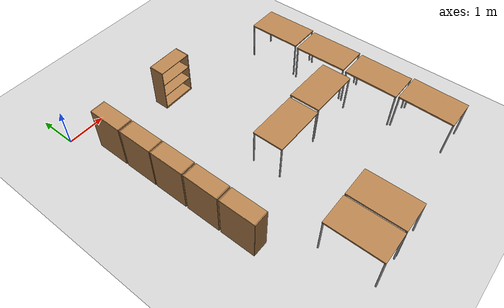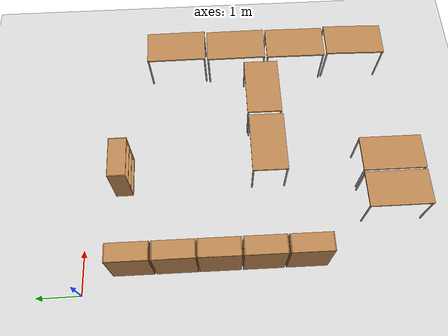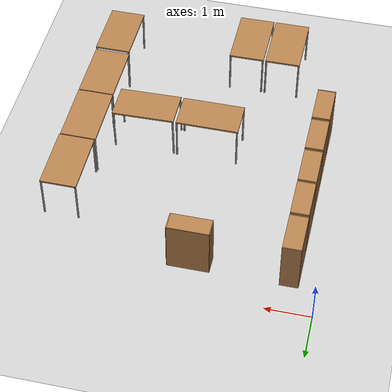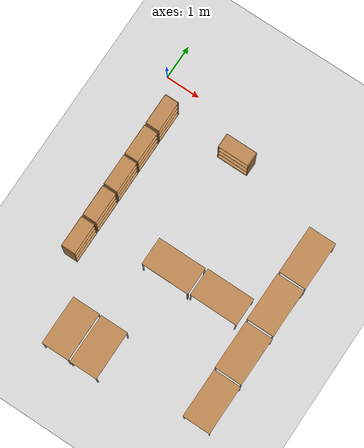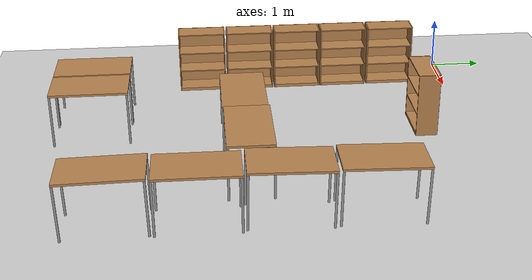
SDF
<sdf version="1.6">
 <world name="default">
  <model name="ground_plane">
   <static>1</static>
   <link name="link">
    <collision name="collision">
     <geometry><plane><normal>0 0 1</normal><size>100 100</size></plane></geometry>
     <surface><friction><ode><mu>100</mu><mu2>50</mu2></ode></friction></surface>
    </collision>
    <visual name="visual">
     <cast_shadows>0</cast_shadows>
     <geometry><plane><normal>0 0 1</normal><size>100 100</size></plane></geometry>
     <material>
      <script><uri>file://media/materials/scripts/gazebo.material</uri><name>Gazebo/Grey</name></script>
     </material>
    </visual>
   </link>
  </model>
  <model name="table_0_clone_0_clone_clone">
   <static>0</static>
   <link name="link">
    <collision name="surface">
     <pose>0 0 1 0 -0 0</pose>
     <geometry><box><size>1.5 0.8 0.03</size></box></geometry>
     <surface><friction><ode><mu>0.6</mu><mu2>0.6</mu2></ode></friction></surface>
    </collision>
    <visual name="visual1">
     <pose>0 0 1 0 -0 0</pose>
     <geometry><box><size>1.4 0.8 0.04</size></box></geometry>
     <material>
      <script><uri>file://media/materials/scripts/gazebo.material</uri><name>Gazebo/Wood</name></script>
     </material>
    </visual>
    <collision name="front_left_leg">
     <pose>0.68 0.38 0.5 0 -0 0</pose>
     <geometry><cylinder><radius>0.02</radius><length>1</length></cylinder></geometry>
    </collision>
    <visual name="front_left_leg">
     <pose>0.68 0.38 0.5 0 -0 0</pose>
     <geometry><cylinder><radius>0.02</radius><length>1</length></cylinder></geometry>
     <material>
      <script><uri>file://media/materials/scripts/gazebo.material</uri><name>Gazebo/Grey</name></script>
     </material>
    </visual>
    <collision name="front_right_leg">
     <pose>0.68 -0.38 0.5 0 -0 0</pose>
     <geometry><cylinder><radius>0.02</radius><length>1</length></cylinder></geometry>
    </collision>
    <visual name="front_right_leg">
     <pose>0.68 -0.38 0.5 0 -0 0</pose>
     <geometry><cylinder><radius>0.02</radius><length>1</length></cylinder></geometry>
     <material>
      <script><uri>file://media/materials/scripts/gazebo.material</uri><name>Gazebo/Grey</name></script>
     </material>
    </visual>
    <collision name="back_right_leg">
     <pose>-0.68 -0.38 0.5 0 -0 0</pose>
     <geometry><cylinder><radius>0.02</radius><length>1</length></cylinder></geometry>
    </collision>
    <visual name="back_right_leg">
     <pose>-0.68 -0.38 0.5 0 -0 0</pose>
     <geometry><cylinder><radius>0.02</radius><length>1</length></cylinder></geometry>
     <material>
      <script><uri>file://media/materials/scripts/gazebo.material</uri><name>Gazebo/Grey</name></script>
     </material>
    </visual>
    <collision name="back_left_leg">
     <pose>-0.68 0.38 0.5 0 -0 0</pose>
     <geometry><cylinder><radius>0.02</radius><length>1</length></cylinder></geometry>
    </collision>
    <visual name="back_left_leg">
     <pose>-0.68 0.38 0.5 0 -0 0</pose>
     <geometry><cylinder><radius>0.02</radius><length>1</length></cylinder></geometry>
     <material>
      <script><uri>file://media/materials/scripts/gazebo.material</uri><name>Gazebo/Grey</name></script>
     </material>
    </visual>
    <inertial>
     <inertia><ixx>1</ixx><ixy>0</ixy><ixz>0</ixz><iyy>1</iyy><iyz>0</iyz><izz>1</izz></inertia>
     <mass>1</mass>
    </inertial>
   </link>
   <pose>5.70425 -5.08214 1e-06 -2e-06 1e-06 -1.57795</pose>
  </model>
  <model name="table_0_clone_0_clone_clone_0">
   <static>0</static>
   <link name="link">
    <collision name="surface">
     <pose>0 0 1 0 -0 0</pose>
     <geometry><box><size>1.5 0.8 0.03</size></box></geometry>
     <surface><friction><ode><mu>0.6</mu><mu2>0.6</mu2></ode></friction></surface>
    </collision>
    <visual name="visual1">
     <pose>0 0 1 0 -0 0</pose>
     <geometry><box><size>1.4 0.8 0.04</size></box></geometry>
     <material>
      <script><uri>file://media/materials/scripts/gazebo.material</uri><name>Gazebo/Wood</name></script>
     </material>
    </visual>
    <collision name="front_left_leg">
     <pose>0.68 0.38 0.5 0 -0 0</pose>
     <geometry><cylinder><radius>0.02</radius><length>1</length></cylinder></geometry>
    </collision>
    <visual name="front_left_leg">
     <pose>0.68 0.38 0.5 0 -0 0</pose>
     <geometry><cylinder><radius>0.02</radius><length>1</length></cylinder></geometry>
     <material>
      <script><uri>file://media/materials/scripts/gazebo.material</uri><name>Gazebo/Grey</name></script>
     </material>
    </visual>
    <collision name="front_right_leg">
     <pose>0.68 -0.38 0.5 0 -0 0</pose>
     <geometry><cylinder><radius>0.02</radius><length>1</length></cylinder></geometry>
    </collision>
    <visual name="front_right_leg">
     <pose>0.68 -0.38 0.5 0 -0 0</pose>
     <geometry><cylinder><radius>0.02</radius><length>1</length></cylinder></geometry>
     <material>
      <script><uri>file://media/materials/scripts/gazebo.material</uri><name>Gazebo/Grey</name></script>
     </material>
    </visual>
    <collision name="back_right_leg">
     <pose>-0.68 -0.38 0.5 0 -0 0</pose>
     <geometry><cylinder><radius>0.02</radius><length>1</length></cylinder></geometry>
    </collision>
    <visual name="back_right_leg">
     <pose>-0.68 -0.38 0.5 0 -0 0</pose>
     <geometry><cylinder><radius>0.02</radius><length>1</length></cylinder></geometry>
     <material>
      <script><uri>file://media/materials/scripts/gazebo.material</uri><name>Gazebo/Grey</name></script>
     </material>
    </visual>
    <collision name="back_left_leg">
     <pose>-0.68 0.38 0.5 0 -0 0</pose>
     <geometry><cylinder><radius>0.02</radius><length>1</length></cylinder></geometry>
    </collision>
    <visual name="back_left_leg">
     <pose>-0.68 0.38 0.5 0 -0 0</pose>
     <geometry><cylinder><radius>0.02</radius><length>1</length></cylinder></geometry>
     <material>
      <script><uri>file://media/materials/scripts/gazebo.material</uri><name>Gazebo/Grey</name></script>
     </material>
    </visual>
    <inertial>
     <inertia><ixx>1</ixx><ixy>0</ixy><ixz>0</ixz><iyy>1</iyy><iyz>0</iyz><izz>1</izz></inertia>
     <mass>1</mass>
    </inertial>
   </link>
   <pose>5.71047 -6.51144 0.015109 -0 0.021586 -1.57795</pose>
  </model>
  <model name="table_0_clone_0_clone_clone_1">
   <static>0</static>
   <link name="link">
    <collision name="surface">
     <pose>0 0 1 0 -0 0</pose>
     <geometry><box><size>1.5 0.8 0.03</size></box></geometry>
     <surface><friction><ode><mu>0.6</mu><mu2>0.6</mu2></ode></friction></surface>
    </collision>
    <visual name="visual1">
     <pose>0 0 1 0 -0 0</pose>
     <geometry><box><size>1.4 0.8 0.04</size></box></geometry>
     <material>
      <script><uri>file://media/materials/scripts/gazebo.material</uri><name>Gazebo/Wood</name></script>
     </material>
    </visual>
    <collision name="front_left_leg">
     <pose>0.68 0.38 0.5 0 -0 0</pose>
     <geometry><cylinder><radius>0.02</radius><length>1</length></cylinder></geometry>
    </collision>
    <visual name="front_left_leg">
     <pose>0.68 0.38 0.5 0 -0 0</pose>
     <geometry><cylinder><radius>0.02</radius><length>1</length></cylinder></geometry>
     <material>
      <script><uri>file://media/materials/scripts/gazebo.material</uri><name>Gazebo/Grey</name></script>
     </material>
    </visual>
    <collision name="front_right_leg">
     <pose>0.68 -0.38 0.5 0 -0 0</pose>
     <geometry><cylinder><radius>0.02</radius><length>1</length></cylinder></geometry>
    </collision>
    <visual name="front_right_leg">
     <pose>0.68 -0.38 0.5 0 -0 0</pose>
     <geometry><cylinder><radius>0.02</radius><length>1</length></cylinder></geometry>
     <material>
      <script><uri>file://media/materials/scripts/gazebo.material</uri><name>Gazebo/Grey</name></script>
     </material>
    </visual>
    <collision name="back_right_leg">
     <pose>-0.68 -0.38 0.5 0 -0 0</pose>
     <geometry><cylinder><radius>0.02</radius><length>1</length></cylinder></geometry>
    </collision>
    <visual name="back_right_leg">
     <pose>-0.68 -0.38 0.5 0 -0 0</pose>
     <geometry><cylinder><radius>0.02</radius><length>1</length></cylinder></geometry>
     <material>
      <script><uri>file://media/materials/scripts/gazebo.material</uri><name>Gazebo/Grey</name></script>
     </material>
    </visual>
    <collision name="back_left_leg">
     <pose>-0.68 0.38 0.5 0 -0 0</pose>
     <geometry><cylinder><radius>0.02</radius><length>1</length></cylinder></geometry>
    </collision>
    <visual name="back_left_leg">
     <pose>-0.68 0.38 0.5 0 -0 0</pose>
     <geometry><cylinder><radius>0.02</radius><length>1</length></cylinder></geometry>
     <material>
      <script><uri>file://media/materials/scripts/gazebo.material</uri><name>Gazebo/Grey</name></script>
     </material>
    </visual>
    <inertial>
     <inertia><ixx>1</ixx><ixy>0</ixy><ixz>0</ixz><iyy>1</iyy><iyz>0</iyz><izz>1</izz></inertia>
     <mass>1</mass>
    </inertial>
   </link>
   <pose>2.60823 -6.96246 -7e-06 0 4e-06 -1.57084</pose>
  </model>
  <model name="table_0_clone_0_clone_clone_2">
   <static>0</static>
   <link name="link">
    <collision name="surface">
     <pose>0 0 1 0 -0 0</pose>
     <geometry><box><size>1.5 0.8 0.03</size></box></geometry>
     <surface><friction><ode><mu>0.6</mu><mu2>0.6</mu2></ode></friction></surface>
    </collision>
    <visual name="visual1">
     <pose>0 0 1 0 -0 0</pose>
     <geometry><box><size>1.4 0.8 0.04</size></box></geometry>
     <material>
      <script><uri>file://media/materials/scripts/gazebo.material</uri><name>Gazebo/Wood</name></script>
     </material>
    </visual>
    <collision name="front_left_leg">
     <pose>0.68 0.38 0.5 0 -0 0</pose>
     <geometry><cylinder><radius>0.02</radius><length>1</length></cylinder></geometry>
    </collision>
    <visual name="front_left_leg">
     <pose>0.68 0.38 0.5 0 -0 0</pose>
     <geometry><cylinder><radius>0.02</radius><length>1</length></cylinder></geometry>
     <material>
      <script><uri>file://media/materials/scripts/gazebo.material</uri><name>Gazebo/Grey</name></script>
     </material>
    </visual>
    <collision name="front_right_leg">
     <pose>0.68 -0.38 0.5 0 -0 0</pose>
     <geometry><cylinder><radius>0.02</radius><length>1</length></cylinder></geometry>
    </collision>
    <visual name="front_right_leg">
     <pose>0.68 -0.38 0.5 0 -0 0</pose>
     <geometry><cylinder><radius>0.02</radius><length>1</length></cylinder></geometry>
     <material>
      <script><uri>file://media/materials/scripts/gazebo.material</uri><name>Gazebo/Grey</name></script>
     </material>
    </visual>
    <collision name="back_right_leg">
     <pose>-0.68 -0.38 0.5 0 -0 0</pose>
     <geometry><cylinder><radius>0.02</radius><length>1</length></cylinder></geometry>
    </collision>
    <visual name="back_right_leg">
     <pose>-0.68 -0.38 0.5 0 -0 0</pose>
     <geometry><cylinder><radius>0.02</radius><length>1</length></cylinder></geometry>
     <material>
      <script><uri>file://media/materials/scripts/gazebo.material</uri><name>Gazebo/Grey</name></script>
     </material>
    </visual>
    <collision name="back_left_leg">
     <pose>-0.68 0.38 0.5 0 -0 0</pose>
     <geometry><cylinder><radius>0.02</radius><length>1</length></cylinder></geometry>
    </collision>
    <visual name="back_left_leg">
     <pose>-0.68 0.38 0.5 0 -0 0</pose>
     <geometry><cylinder><radius>0.02</radius><length>1</length></cylinder></geometry>
     <material>
      <script><uri>file://media/materials/scripts/gazebo.material</uri><name>Gazebo/Grey</name></script>
     </material>
    </visual>
    <inertial>
     <inertia><ixx>1</ixx><ixy>0</ixy><ixz>0</ixz><iyy>1</iyy><iyz>0</iyz><izz>1</izz></inertia>
     <mass>1</mass>
    </inertial>
   </link>
   <pose>1.76358 -6.96121 -1e-06 0 0 -1.57001</pose>
  </model>
  <model name="bookshelf">
   <static>1</static>
   <link name="link">
    <inertial><mass>1</mass></inertial>
    <collision name="back">
     <pose>0 0.005 0.6 0 -0 0</pose>
     <geometry><box><size>0.9 0.01 1.2</size></box></geometry>
    </collision>
    <visual name="visual1">
     <pose>0 0.005 0.6 0 -0 0</pose>
     <geometry><box><size>0.9 0.01 1.2</size></box></geometry>
     <material>
      <script><uri>file://media/materials/scripts/gazebo.material</uri><name>Gazebo/Wood</name></script>
     </material>
    </visual>
    <collision name="left_side">
     <pose>0.45 -0.195 0.6 0 -0 0</pose>
     <geometry><box><size>0.02 0.4 1.2</size></box></geometry>
    </collision>
    <visual name="visual2">
     <pose>0.45 -0.195 0.6 0 -0 0</pose>
     <geometry><box><size>0.02 0.4 1.2</size></box></geometry>
     <material>
      <script><uri>file://media/materials/scripts/gazebo.material</uri><name>Gazebo/Wood</name></script>
     </material>
    </visual>
    <collision name="right_side">
     <pose>-0.45 -0.195 0.6 0 -0 0</pose>
     <geometry><box><size>0.02 0.4 1.2</size></box></geometry>
    </collision>
    <visual name="visual3">
     <pose>-0.45 -0.195 0.6 0 -0 0</pose>
     <geometry><box><size>0.02 0.4 1.2</size></box></geometry>
     <material>
      <script><uri>file://media/materials/scripts/gazebo.material</uri><name>Gazebo/Wood</name></script>
     </material>
    </visual>
    <collision name="bottom">
     <pose>0 -0.195 0.03 0 -0 0</pose>
     <geometry><box><size>0.88 0.4 0.06</size></box></geometry>
    </collision>
    <visual name="visual4">
     <pose>0 -0.195 0.03 0 -0 0</pose>
     <geometry><box><size>0.88 0.4 0.06</size></box></geometry>
     <material>
      <script><uri>file://media/materials/scripts/gazebo.material</uri><name>Gazebo/Wood</name></script>
     </material>
    </visual>
    <collision name="top">
     <pose>0 -0.195 1.19 0 -0 0</pose>
     <geometry><box><size>0.88 0.4 0.02</size></box></geometry>
    </collision>
    <visual name="visual5">
     <pose>0 -0.195 1.19 0 -0 0</pose>
     <geometry><box><size>0.88 0.4 0.02</size></box></geometry>
     <material>
      <script><uri>file://media/materials/scripts/gazebo.material</uri><name>Gazebo/Wood</name></script>
     </material>
    </visual>
    <collision name="low_shelf">
     <pose>0 -0.195 0.43 0 -0 0</pose>
     <geometry><box><size>0.88 0.4 0.02</size></box></geometry>
    </collision>
    <visual name="visual6">
     <pose>0 -0.195 0.43 0 -0 0</pose>
     <geometry><box><size>0.88 0.4 0.02</size></box></geometry>
     <material>
      <script><uri>file://media/materials/scripts/gazebo.material</uri><name>Gazebo/Wood</name></script>
     </material>
    </visual>
    <collision name="high_shelf">
     <pose>0 -0.195 0.8 0 -0 0</pose>
     <geometry><box><size>0.88 0.4 0.02</size></box></geometry>
    </collision>
    <visual name="visual7">
     <pose>0 -0.195 0.8 0 -0 0</pose>
     <geometry><box><size>0.88 0.4 0.02</size></box></geometry>
     <material>
      <script><uri>file://media/materials/scripts/gazebo.material</uri><name>Gazebo/Wood</name></script>
     </material>
    </visual>
   </link>
   <pose>0.408915 -1.12037 0 0 -0 1.56964</pose>
  </model>
  <model name="bookshelf_clone">
   <static>1</static>
   <link name="link">
    <inertial><mass>1</mass></inertial>
    <collision name="back">
     <pose>0 0.005 0.6 0 -0 0</pose>
     <geometry><box><size>0.9 0.01 1.2</size></box></geometry>
    </collision>
    <visual name="visual1">
     <pose>0 0.005 0.6 0 -0 0</pose>
     <geometry><box><size>0.9 0.01 1.2</size></box></geometry>
     <material>
      <script><uri>file://media/materials/scripts/gazebo.material</uri><name>Gazebo/Wood</name></script>
     </material>
    </visual>
    <collision name="left_side">
     <pose>0.45 -0.195 0.6 0 -0 0</pose>
     <geometry><box><size>0.02 0.4 1.2</size></box></geometry>
    </collision>
    <visual name="visual2">
     <pose>0.45 -0.195 0.6 0 -0 0</pose>
     <geometry><box><size>0.02 0.4 1.2</size></box></geometry>
     <material>
      <script><uri>file://media/materials/scripts/gazebo.material</uri><name>Gazebo/Wood</name></script>
     </material>
    </visual>
    <collision name="right_side">
     <pose>-0.45 -0.195 0.6 0 -0 0</pose>
     <geometry><box><size>0.02 0.4 1.2</size></box></geometry>
    </collision>
    <visual name="visual3">
     <pose>-0.45 -0.195 0.6 0 -0 0</pose>
     <geometry><box><size>0.02 0.4 1.2</size></box></geometry>
     <material>
      <script><uri>file://media/materials/scripts/gazebo.material</uri><name>Gazebo/Wood</name></script>
     </material>
    </visual>
    <collision name="bottom">
     <pose>0 -0.195 0.03 0 -0 0</pose>
     <geometry><box><size>0.88 0.4 0.06</size></box></geometry>
    </collision>
    <visual name="visual4">
     <pose>0 -0.195 0.03 0 -0 0</pose>
     <geometry><box><size>0.88 0.4 0.06</size></box></geometry>
     <material>
      <script><uri>file://media/materials/scripts/gazebo.material</uri><name>Gazebo/Wood</name></script>
     </material>
    </visual>
    <collision name="top">
     <pose>0 -0.195 1.19 0 -0 0</pose>
     <geometry><box><size>0.88 0.4 0.02</size></box></geometry>
    </collision>
    <visual name="visual5">
     <pose>0 -0.195 1.19 0 -0 0</pose>
     <geometry><box><size>0.88 0.4 0.02</size></box></geometry>
     <material>
      <script><uri>file://media/materials/scripts/gazebo.material</uri><name>Gazebo/Wood</name></script>
     </material>
    </visual>
    <collision name="low_shelf">
     <pose>0 -0.195 0.43 0 -0 0</pose>
     <geometry><box><size>0.88 0.4 0.02</size></box></geometry>
    </collision>
    <visual name="visual6">
     <pose>0 -0.195 0.43 0 -0 0</pose>
     <geometry><box><size>0.88 0.4 0.02</size></box></geometry>
     <material>
      <script><uri>file://media/materials/scripts/gazebo.material</uri><name>Gazebo/Wood</name></script>
     </material>
    </visual>
    <collision name="high_shelf">
     <pose>0 -0.195 0.8 0 -0 0</pose>
     <geometry><box><size>0.88 0.4 0.02</size></box></geometry>
    </collision>
    <visual name="visual7">
     <pose>0 -0.195 0.8 0 -0 0</pose>
     <geometry><box><size>0.88 0.4 0.02</size></box></geometry>
     <material>
      <script><uri>file://media/materials/scripts/gazebo.material</uri><name>Gazebo/Wood</name></script>
     </material>
    </visual>
   </link>
   <pose>0.408917 -2.07439 0 0 -0 1.56964</pose>
  </model>
  <model name="bookshelf_clone_0">
   <static>1</static>
   <link name="link">
    <inertial><mass>1</mass></inertial>
    <collision name="back">
     <pose>0 0.005 0.6 0 -0 0</pose>
     <geometry><box><size>0.9 0.01 1.2</size></box></geometry>
    </collision>
    <visual name="visual1">
     <pose>0 0.005 0.6 0 -0 0</pose>
     <geometry><box><size>0.9 0.01 1.2</size></box></geometry>
     <material>
      <script><uri>file://media/materials/scripts/gazebo.material</uri><name>Gazebo/Wood</name></script>
     </material>
    </visual>
    <collision name="left_side">
     <pose>0.45 -0.195 0.6 0 -0 0</pose>
     <geometry><box><size>0.02 0.4 1.2</size></box></geometry>
    </collision>
    <visual name="visual2">
     <pose>0.45 -0.195 0.6 0 -0 0</pose>
     <geometry><box><size>0.02 0.4 1.2</size></box></geometry>
     <material>
      <script><uri>file://media/materials/scripts/gazebo.material</uri><name>Gazebo/Wood</name></script>
     </material>
    </visual>
    <collision name="right_side">
     <pose>-0.45 -0.195 0.6 0 -0 0</pose>
     <geometry><box><size>0.02 0.4 1.2</size></box></geometry>
    </collision>
    <visual name="visual3">
     <pose>-0.45 -0.195 0.6 0 -0 0</pose>
     <geometry><box><size>0.02 0.4 1.2</size></box></geometry>
     <material>
      <script><uri>file://media/materials/scripts/gazebo.material</uri><name>Gazebo/Wood</name></script>
     </material>
    </visual>
    <collision name="bottom">
     <pose>0 -0.195 0.03 0 -0 0</pose>
     <geometry><box><size>0.88 0.4 0.06</size></box></geometry>
    </collision>
    <visual name="visual4">
     <pose>0 -0.195 0.03 0 -0 0</pose>
     <geometry><box><size>0.88 0.4 0.06</size></box></geometry>
     <material>
      <script><uri>file://media/materials/scripts/gazebo.material</uri><name>Gazebo/Wood</name></script>
     </material>
    </visual>
    <collision name="top">
     <pose>0 -0.195 1.19 0 -0 0</pose>
     <geometry><box><size>0.88 0.4 0.02</size></box></geometry>
    </collision>
    <visual name="visual5">
     <pose>0 -0.195 1.19 0 -0 0</pose>
     <geometry><box><size>0.88 0.4 0.02</size></box></geometry>
     <material>
      <script><uri>file://media/materials/scripts/gazebo.material</uri><name>Gazebo/Wood</name></script>
     </material>
    </visual>
    <collision name="low_shelf">
     <pose>0 -0.195 0.43 0 -0 0</pose>
     <geometry><box><size>0.88 0.4 0.02</size></box></geometry>
    </collision>
    <visual name="visual6">
     <pose>0 -0.195 0.43 0 -0 0</pose>
     <geometry><box><size>0.88 0.4 0.02</size></box></geometry>
     <material>
      <script><uri>file://media/materials/scripts/gazebo.material</uri><name>Gazebo/Wood</name></script>
     </material>
    </visual>
    <collision name="high_shelf">
     <pose>0 -0.195 0.8 0 -0 0</pose>
     <geometry><box><size>0.88 0.4 0.02</size></box></geometry>
    </collision>
    <visual name="visual7">
     <pose>0 -0.195 0.8 0 -0 0</pose>
     <geometry><box><size>0.88 0.4 0.02</size></box></geometry>
     <material>
      <script><uri>file://media/materials/scripts/gazebo.material</uri><name>Gazebo/Wood</name></script>
     </material>
    </visual>
   </link>
   <pose>0.408917 -3.01429 0 0 -0 1.56964</pose>
  </model>
  <model name="bookshelf_clone_1">
   <static>1</static>
   <link name="link">
    <inertial><mass>1</mass></inertial>
    <collision name="back">
     <pose>0 0.005 0.6 0 -0 0</pose>
     <geometry><box><size>0.9 0.01 1.2</size></box></geometry>
    </collision>
    <visual name="visual1">
     <pose>0 0.005 0.6 0 -0 0</pose>
     <geometry><box><size>0.9 0.01 1.2</size></box></geometry>
     <material>
      <script><uri>file://media/materials/scripts/gazebo.material</uri><name>Gazebo/Wood</name></script>
     </material>
    </visual>
    <collision name="left_side">
     <pose>0.45 -0.195 0.6 0 -0 0</pose>
     <geometry><box><size>0.02 0.4 1.2</size></box></geometry>
    </collision>
    <visual name="visual2">
     <pose>0.45 -0.195 0.6 0 -0 0</pose>
     <geometry><box><size>0.02 0.4 1.2</size></box></geometry>
     <material>
      <script><uri>file://media/materials/scripts/gazebo.material</uri><name>Gazebo/Wood</name></script>
     </material>
    </visual>
    <collision name="right_side">
     <pose>-0.45 -0.195 0.6 0 -0 0</pose>
     <geometry><box><size>0.02 0.4 1.2</size></box></geometry>
    </collision>
    <visual name="visual3">
     <pose>-0.45 -0.195 0.6 0 -0 0</pose>
     <geometry><box><size>0.02 0.4 1.2</size></box></geometry>
     <material>
      <script><uri>file://media/materials/scripts/gazebo.material</uri><name>Gazebo/Wood</name></script>
     </material>
    </visual>
    <collision name="bottom">
     <pose>0 -0.195 0.03 0 -0 0</pose>
     <geometry><box><size>0.88 0.4 0.06</size></box></geometry>
    </collision>
    <visual name="visual4">
     <pose>0 -0.195 0.03 0 -0 0</pose>
     <geometry><box><size>0.88 0.4 0.06</size></box></geometry>
     <material>
      <script><uri>file://media/materials/scripts/gazebo.material</uri><name>Gazebo/Wood</name></script>
     </material>
    </visual>
    <collision name="top">
     <pose>0 -0.195 1.19 0 -0 0</pose>
     <geometry><box><size>0.88 0.4 0.02</size></box></geometry>
    </collision>
    <visual name="visual5">
     <pose>0 -0.195 1.19 0 -0 0</pose>
     <geometry><box><size>0.88 0.4 0.02</size></box></geometry>
     <material>
      <script><uri>file://media/materials/scripts/gazebo.material</uri><name>Gazebo/Wood</name></script>
     </material>
    </visual>
    <collision name="low_shelf">
     <pose>0 -0.195 0.43 0 -0 0</pose>
     <geometry><box><size>0.88 0.4 0.02</size></box></geometry>
    </collision>
    <visual name="visual6">
     <pose>0 -0.195 0.43 0 -0 0</pose>
     <geometry><box><size>0.88 0.4 0.02</size></box></geometry>
     <material>
      <script><uri>file://media/materials/scripts/gazebo.material</uri><name>Gazebo/Wood</name></script>
     </material>
    </visual>
    <collision name="high_shelf">
     <pose>0 -0.195 0.8 0 -0 0</pose>
     <geometry><box><size>0.88 0.4 0.02</size></box></geometry>
    </collision>
    <visual name="visual7">
     <pose>0 -0.195 0.8 0 -0 0</pose>
     <geometry><box><size>0.88 0.4 0.02</size></box></geometry>
     <material>
      <script><uri>file://media/materials/scripts/gazebo.material</uri><name>Gazebo/Wood</name></script>
     </material>
    </visual>
   </link>
   <pose>0.408917 -3.96628 0 0 -0 1.56964</pose>
  </model>
  <model name="bookshelf_clone_2">
   <static>1</static>
   <link name="link">
    <inertial><mass>1</mass></inertial>
    <collision name="back">
     <pose>0 0.005 0.6 0 -0 0</pose>
     <geometry><box><size>0.9 0.01 1.2</size></box></geometry>
    </collision>
    <visual name="visual1">
     <pose>0 0.005 0.6 0 -0 0</pose>
     <geometry><box><size>0.9 0.01 1.2</size></box></geometry>
     <material>
      <script><uri>file://media/materials/scripts/gazebo.material</uri><name>Gazebo/Wood</name></script>
     </material>
    </visual>
    <collision name="left_side">
     <pose>0.45 -0.195 0.6 0 -0 0</pose>
     <geometry><box><size>0.02 0.4 1.2</size></box></geometry>
    </collision>
    <visual name="visual2">
     <pose>0.45 -0.195 0.6 0 -0 0</pose>
     <geometry><box><size>0.02 0.4 1.2</size></box></geometry>
     <material>
      <script><uri>file://media/materials/scripts/gazebo.material</uri><name>Gazebo/Wood</name></script>
     </material>
    </visual>
    <collision name="right_side">
     <pose>-0.45 -0.195 0.6 0 -0 0</pose>
     <geometry><box><size>0.02 0.4 1.2</size></box></geometry>
    </collision>
    <visual name="visual3">
     <pose>-0.45 -0.195 0.6 0 -0 0</pose>
     <geometry><box><size>0.02 0.4 1.2</size></box></geometry>
     <material>
      <script><uri>file://media/materials/scripts/gazebo.material</uri><name>Gazebo/Wood</name></script>
     </material>
    </visual>
    <collision name="bottom">
     <pose>0 -0.195 0.03 0 -0 0</pose>
     <geometry><box><size>0.88 0.4 0.06</size></box></geometry>
    </collision>
    <visual name="visual4">
     <pose>0 -0.195 0.03 0 -0 0</pose>
     <geometry><box><size>0.88 0.4 0.06</size></box></geometry>
     <material>
      <script><uri>file://media/materials/scripts/gazebo.material</uri><name>Gazebo/Wood</name></script>
     </material>
    </visual>
    <collision name="top">
     <pose>0 -0.195 1.19 0 -0 0</pose>
     <geometry><box><size>0.88 0.4 0.02</size></box></geometry>
    </collision>
    <visual name="visual5">
     <pose>0 -0.195 1.19 0 -0 0</pose>
     <geometry><box><size>0.88 0.4 0.02</size></box></geometry>
     <material>
      <script><uri>file://media/materials/scripts/gazebo.material</uri><name>Gazebo/Wood</name></script>
     </material>
    </visual>
    <collision name="low_shelf">
     <pose>0 -0.195 0.43 0 -0 0</pose>
     <geometry><box><size>0.88 0.4 0.02</size></box></geometry>
    </collision>
    <visual name="visual6">
     <pose>0 -0.195 0.43 0 -0 0</pose>
     <geometry><box><size>0.88 0.4 0.02</size></box></geometry>
     <material>
      <script><uri>file://media/materials/scripts/gazebo.material</uri><name>Gazebo/Wood</name></script>
     </material>
    </visual>
    <collision name="high_shelf">
     <pose>0 -0.195 0.8 0 -0 0</pose>
     <geometry><box><size>0.88 0.4 0.02</size></box></geometry>
    </collision>
    <visual name="visual7">
     <pose>0 -0.195 0.8 0 -0 0</pose>
     <geometry><box><size>0.88 0.4 0.02</size></box></geometry>
     <material>
      <script><uri>file://media/materials/scripts/gazebo.material</uri><name>Gazebo/Wood</name></script>
     </material>
    </visual>
   </link>
   <pose>0.408917 -4.91856 0 0 -0 1.56964</pose>
  </model>
  <model name="table_0_clone_0_clone_clone_clone">
   <static>0</static>
   <link name="link">
    <collision name="surface">
     <pose>0 0 1 0 -0 0</pose>
     <geometry><box><size>1.5 0.8 0.03</size></box></geometry>
     <surface><friction><ode><mu>0.6</mu><mu2>0.6</mu2></ode></friction></surface>
    </collision>
    <visual name="visual1">
     <pose>0 0 1 0 -0 0</pose>
     <geometry><box><size>1.4 0.8 0.04</size></box></geometry>
     <material>
      <script><uri>file://media/materials/scripts/gazebo.material</uri><name>Gazebo/Wood</name></script>
     </material>
    </visual>
    <collision name="front_left_leg">
     <pose>0.68 0.38 0.5 0 -0 0</pose>
     <geometry><cylinder><radius>0.02</radius><length>1</length></cylinder></geometry>
    </collision>
    <visual name="front_left_leg">
     <pose>0.68 0.38 0.5 0 -0 0</pose>
     <geometry><cylinder><radius>0.02</radius><length>1</length></cylinder></geometry>
     <material>
      <script><uri>file://media/materials/scripts/gazebo.material</uri><name>Gazebo/Grey</name></script>
     </material>
    </visual>
    <collision name="front_right_leg">
     <pose>0.68 -0.38 0.5 0 -0 0</pose>
     <geometry><cylinder><radius>0.02</radius><length>1</length></cylinder></geometry>
    </collision>
    <visual name="front_right_leg">
     <pose>0.68 -0.38 0.5 0 -0 0</pose>
     <geometry><cylinder><radius>0.02</radius><length>1</length></cylinder></geometry>
     <material>
      <script><uri>file://media/materials/scripts/gazebo.material</uri><name>Gazebo/Grey</name></script>
     </material>
    </visual>
    <collision name="back_right_leg">
     <pose>-0.68 -0.38 0.5 0 -0 0</pose>
     <geometry><cylinder><radius>0.02</radius><length>1</length></cylinder></geometry>
    </collision>
    <visual name="back_right_leg">
     <pose>-0.68 -0.38 0.5 0 -0 0</pose>
     <geometry><cylinder><radius>0.02</radius><length>1</length></cylinder></geometry>
     <material>
      <script><uri>file://media/materials/scripts/gazebo.material</uri><name>Gazebo/Grey</name></script>
     </material>
    </visual>
    <collision name="back_left_leg">
     <pose>-0.68 0.38 0.5 0 -0 0</pose>
     <geometry><cylinder><radius>0.02</radius><length>1</length></cylinder></geometry>
    </collision>
    <visual name="back_left_leg">
     <pose>-0.68 0.38 0.5 0 -0 0</pose>
     <geometry><cylinder><radius>0.02</radius><length>1</length></cylinder></geometry>
     <material>
      <script><uri>file://media/materials/scripts/gazebo.material</uri><name>Gazebo/Grey</name></script>
     </material>
    </visual>
    <inertial>
     <inertia><ixx>1</ixx><ixy>0</ixy><ixz>0</ixz><iyy>1</iyy><iyz>0</iyz><izz>1</izz></inertia>
     <mass>1</mass>
    </inertial>
   </link>
   <pose>5.70342 -3.65289 0.015065 1e-06 -0.021578 -1.57795</pose>
  </model>
  <model name="table_0_clone_0_clone_clone_clone_0">
   <static>0</static>
   <link name="link">
    <collision name="surface">
     <pose>0 0 1 0 -0 0</pose>
     <geometry><box><size>1.5 0.8 0.03</size></box></geometry>
     <surface><friction><ode><mu>0.6</mu><mu2>0.6</mu2></ode></friction></surface>
    </collision>
    <visual name="visual1">
     <pose>0 0 1 0 -0 0</pose>
     <geometry><box><size>1.4 0.8 0.04</size></box></geometry>
     <material>
      <script><uri>file://media/materials/scripts/gazebo.material</uri><name>Gazebo/Wood</name></script>
     </material>
    </visual>
    <collision name="front_left_leg">
     <pose>0.68 0.38 0.5 0 -0 0</pose>
     <geometry><cylinder><radius>0.02</radius><length>1</length></cylinder></geometry>
    </collision>
    <visual name="front_left_leg">
     <pose>0.68 0.38 0.5 0 -0 0</pose>
     <geometry><cylinder><radius>0.02</radius><length>1</length></cylinder></geometry>
     <material>
      <script><uri>file://media/materials/scripts/gazebo.material</uri><name>Gazebo/Grey</name></script>
     </material>
    </visual>
    <collision name="front_right_leg">
     <pose>0.68 -0.38 0.5 0 -0 0</pose>
     <geometry><cylinder><radius>0.02</radius><length>1</length></cylinder></geometry>
    </collision>
    <visual name="front_right_leg">
     <pose>0.68 -0.38 0.5 0 -0 0</pose>
     <geometry><cylinder><radius>0.02</radius><length>1</length></cylinder></geometry>
     <material>
      <script><uri>file://media/materials/scripts/gazebo.material</uri><name>Gazebo/Grey</name></script>
     </material>
    </visual>
    <collision name="back_right_leg">
     <pose>-0.68 -0.38 0.5 0 -0 0</pose>
     <geometry><cylinder><radius>0.02</radius><length>1</length></cylinder></geometry>
    </collision>
    <visual name="back_right_leg">
     <pose>-0.68 -0.38 0.5 0 -0 0</pose>
     <geometry><cylinder><radius>0.02</radius><length>1</length></cylinder></geometry>
     <material>
      <script><uri>file://media/materials/scripts/gazebo.material</uri><name>Gazebo/Grey</name></script>
     </material>
    </visual>
    <collision name="back_left_leg">
     <pose>-0.68 0.38 0.5 0 -0 0</pose>
     <geometry><cylinder><radius>0.02</radius><length>1</length></cylinder></geometry>
    </collision>
    <visual name="back_left_leg">
     <pose>-0.68 0.38 0.5 0 -0 0</pose>
     <geometry><cylinder><radius>0.02</radius><length>1</length></cylinder></geometry>
     <material>
      <script><uri>file://media/materials/scripts/gazebo.material</uri><name>Gazebo/Grey</name></script>
     </material>
    </visual>
    <inertial>
     <inertia><ixx>1</ixx><ixy>0</ixy><ixz>0</ixz><iyy>1</iyy><iyz>0</iyz><izz>1</izz></inertia>
     <mass>1</mass>
    </inertial>
   </link>
   <pose>5.72155 -2.20174 0.014447 0 -0.02064 -1.57795</pose>
  </model>
  <model name="bookshelf_0_clone_1">
   <static>1</static>
   <link name="link">
    <inertial><mass>1</mass></inertial>
    <collision name="back">
     <pose>0 0.005 0.6 0 -0 0</pose>
     <geometry><box><size>0.9 0.01 1.2</size></box></geometry>
    </collision>
    <visual name="visual1">
     <pose>0 0.005 0.6 0 -0 0</pose>
     <geometry><box><size>0.9 0.01 1.2</size></box></geometry>
     <material>
      <script><uri>file://media/materials/scripts/gazebo.material</uri><name>Gazebo/Wood</name></script>
     </material>
    </visual>
    <collision name="left_side">
     <pose>0.45 -0.195 0.6 0 -0 0</pose>
     <geometry><box><size>0.02 0.4 1.2</size></box></geometry>
    </collision>
    <visual name="visual2">
     <pose>0.45 -0.195 0.6 0 -0 0</pose>
     <geometry><box><size>0.02 0.4 1.2</size></box></geometry>
     <material>
      <script><uri>file://media/materials/scripts/gazebo.material</uri><name>Gazebo/Wood</name></script>
     </material>
    </visual>
    <collision name="right_side">
     <pose>-0.45 -0.195 0.6 0 -0 0</pose>
     <geometry><box><size>0.02 0.4 1.2</size></box></geometry>
    </collision>
    <visual name="visual3">
     <pose>-0.45 -0.195 0.6 0 -0 0</pose>
     <geometry><box><size>0.02 0.4 1.2</size></box></geometry>
     <material>
      <script><uri>file://media/materials/scripts/gazebo.material</uri><name>Gazebo/Wood</name></script>
     </material>
    </visual>
    <collision name="bottom">
     <pose>0 -0.195 0.03 0 -0 0</pose>
     <geometry><box><size>0.88 0.4 0.06</size></box></geometry>
    </collision>
    <visual name="visual4">
     <pose>0 -0.195 0.03 0 -0 0</pose>
     <geometry><box><size>0.88 0.4 0.06</size></box></geometry>
     <material>
      <script><uri>file://media/materials/scripts/gazebo.material</uri><name>Gazebo/Wood</name></script>
     </material>
    </visual>
    <collision name="top">
     <pose>0 -0.195 1.19 0 -0 0</pose>
     <geometry><box><size>0.88 0.4 0.02</size></box></geometry>
    </collision>
    <visual name="visual5">
     <pose>0 -0.195 1.19 0 -0 0</pose>
     <geometry><box><size>0.88 0.4 0.02</size></box></geometry>
     <material>
      <script><uri>file://media/materials/scripts/gazebo.material</uri><name>Gazebo/Wood</name></script>
     </material>
    </visual>
    <collision name="low_shelf">
     <pose>0 -0.195 0.43 0 -0 0</pose>
     <geometry><box><size>0.88 0.4 0.02</size></box></geometry>
    </collision>
    <visual name="visual6">
     <pose>0 -0.195 0.43 0 -0 0</pose>
     <geometry><box><size>0.88 0.4 0.02</size></box></geometry>
     <material>
      <script><uri>file://media/materials/scripts/gazebo.material</uri><name>Gazebo/Wood</name></script>
     </material>
    </visual>
    <collision name="high_shelf">
     <pose>0 -0.195 0.8 0 -0 0</pose>
     <geometry><box><size>0.88 0.4 0.02</size></box></geometry>
    </collision>
    <visual name="visual7">
     <pose>0 -0.195 0.8 0 -0 0</pose>
     <geometry><box><size>0.88 0.4 0.02</size></box></geometry>
     <material>
      <script><uri>file://media/materials/scripts/gazebo.material</uri><name>Gazebo/Wood</name></script>
     </material>
    </visual>
   </link>
   <pose>2.7339 -0.667427 0 0 -0 0</pose>
  </model>
  <model name="table_clone_3">
   <static>0</static>
   <link name="link">
    <collision name="surface">
     <pose>0 0 1 0 -0 0</pose>
     <geometry><box><size>1.5 0.8 0.03</size></box></geometry>
     <surface><friction><ode><mu>0.6</mu><mu2>0.6</mu2></ode></friction></surface>
    </collision>
    <visual name="visual1">
     <pose>0 0 1 0 -0 0</pose>
     <geometry><box><size>1.4 0.8 0.04</size></box></geometry>
     <material>
      <script><uri>file://media/materials/scripts/gazebo.material</uri><name>Gazebo/Wood</name></script>
     </material>
    </visual>
    <collision name="front_left_leg">
     <pose>0.68 0.38 0.5 0 -0 0</pose>
     <geometry><cylinder><radius>0.02</radius><length>1</length></cylinder></geometry>
    </collision>
    <visual name="front_left_leg">
     <pose>0.68 0.38 0.5 0 -0 0</pose>
     <geometry><cylinder><radius>0.02</radius><length>1</length></cylinder></geometry>
     <material>
      <script><uri>file://media/materials/scripts/gazebo.material</uri><name>Gazebo/Grey</name></script>
     </material>
    </visual>
    <collision name="front_right_leg">
     <pose>0.68 -0.38 0.5 0 -0 0</pose>
     <geometry><cylinder><radius>0.02</radius><length>1</length></cylinder></geometry>
    </collision>
    <visual name="front_right_leg">
     <pose>0.68 -0.38 0.5 0 -0 0</pose>
     <geometry><cylinder><radius>0.02</radius><length>1</length></cylinder></geometry>
     <material>
      <script><uri>file://media/materials/scripts/gazebo.material</uri><name>Gazebo/Grey</name></script>
     </material>
    </visual>
    <collision name="back_right_leg">
     <pose>-0.68 -0.38 0.5 0 -0 0</pose>
     <geometry><cylinder><radius>0.02</radius><length>1</length></cylinder></geometry>
    </collision>
    <visual name="back_right_leg">
     <pose>-0.68 -0.38 0.5 0 -0 0</pose>
     <geometry><cylinder><radius>0.02</radius><length>1</length></cylinder></geometry>
     <material>
      <script><uri>file://media/materials/scripts/gazebo.material</uri><name>Gazebo/Grey</name></script>
     </material>
    </visual>
    <collision name="back_left_leg">
     <pose>-0.68 0.38 0.5 0 -0 0</pose>
     <geometry><cylinder><radius>0.02</radius><length>1</length></cylinder></geometry>
    </collision>
    <visual name="back_left_leg">
     <pose>-0.68 0.38 0.5 0 -0 0</pose>
     <geometry><cylinder><radius>0.02</radius><length>1</length></cylinder></geometry>
     <material>
      <script><uri>file://media/materials/scripts/gazebo.material</uri><name>Gazebo/Grey</name></script>
     </material>
    </visual>
    <inertial>
     <inertia><ixx>1</ixx><ixy>0</ixy><ixz>0</ixz><iyy>1</iyy><iyz>0</iyz><izz>1</izz></inertia>
     <mass>1</mass>
    </inertial>
   </link>
   <pose>4.45484 -4.20369 0.015108 3e-06 0.021585 -0.003148</pose>
  </model>
  <model name="table_clone_4">
   <static>0</static>
   <link name="link">
    <collision name="surface">
     <pose>0 0 1 0 -0 0</pose>
     <geometry><box><size>1.5 0.8 0.03</size></box></geometry>
     <surface><friction><ode><mu>0.6</mu><mu2>0.6</mu2></ode></friction></surface>
    </collision>
    <visual name="visual1">
     <pose>0 0 1 0 -0 0</pose>
     <geometry><box><size>1.4 0.8 0.04</size></box></geometry>
     <material>
      <script><uri>file://media/materials/scripts/gazebo.material</uri><name>Gazebo/Wood</name></script>
     </material>
    </visual>
    <collision name="front_left_leg">
     <pose>0.68 0.38 0.5 0 -0 0</pose>
     <geometry><cylinder><radius>0.02</radius><length>1</length></cylinder></geometry>
    </collision>
    <visual name="front_left_leg">
     <pose>0.68 0.38 0.5 0 -0 0</pose>
     <geometry><cylinder><radius>0.02</radius><length>1</length></cylinder></geometry>
     <material>
      <script><uri>file://media/materials/scripts/gazebo.material</uri><name>Gazebo/Grey</name></script>
     </material>
    </visual>
    <collision name="front_right_leg">
     <pose>0.68 -0.38 0.5 0 -0 0</pose>
     <geometry><cylinder><radius>0.02</radius><length>1</length></cylinder></geometry>
    </collision>
    <visual name="front_right_leg">
     <pose>0.68 -0.38 0.5 0 -0 0</pose>
     <geometry><cylinder><radius>0.02</radius><length>1</length></cylinder></geometry>
     <material>
      <script><uri>file://media/materials/scripts/gazebo.material</uri><name>Gazebo/Grey</name></script>
     </material>
    </visual>
    <collision name="back_right_leg">
     <pose>-0.68 -0.38 0.5 0 -0 0</pose>
     <geometry><cylinder><radius>0.02</radius><length>1</length></cylinder></geometry>
    </collision>
    <visual name="back_right_leg">
     <pose>-0.68 -0.38 0.5 0 -0 0</pose>
     <geometry><cylinder><radius>0.02</radius><length>1</length></cylinder></geometry>
     <material>
      <script><uri>file://media/materials/scripts/gazebo.material</uri><name>Gazebo/Grey</name></script>
     </material>
    </visual>
    <collision name="back_left_leg">
     <pose>-0.68 0.38 0.5 0 -0 0</pose>
     <geometry><cylinder><radius>0.02</radius><length>1</length></cylinder></geometry>
    </collision>
    <visual name="back_left_leg">
     <pose>-0.68 0.38 0.5 0 -0 0</pose>
     <geometry><cylinder><radius>0.02</radius><length>1</length></cylinder></geometry>
     <material>
      <script><uri>file://media/materials/scripts/gazebo.material</uri><name>Gazebo/Grey</name></script>
     </material>
    </visual>
    <inertial>
     <inertia><ixx>1</ixx><ixy>0</ixy><ixz>0</ixz><iyy>1</iyy><iyz>0</iyz><izz>1</izz></inertia>
     <mass>1</mass>
    </inertial>
   </link>
   <pose>3.02559 -4.221 1e-06 0 1e-06 -0.003267</pose>
  </model>
 </world>
</sdf>
